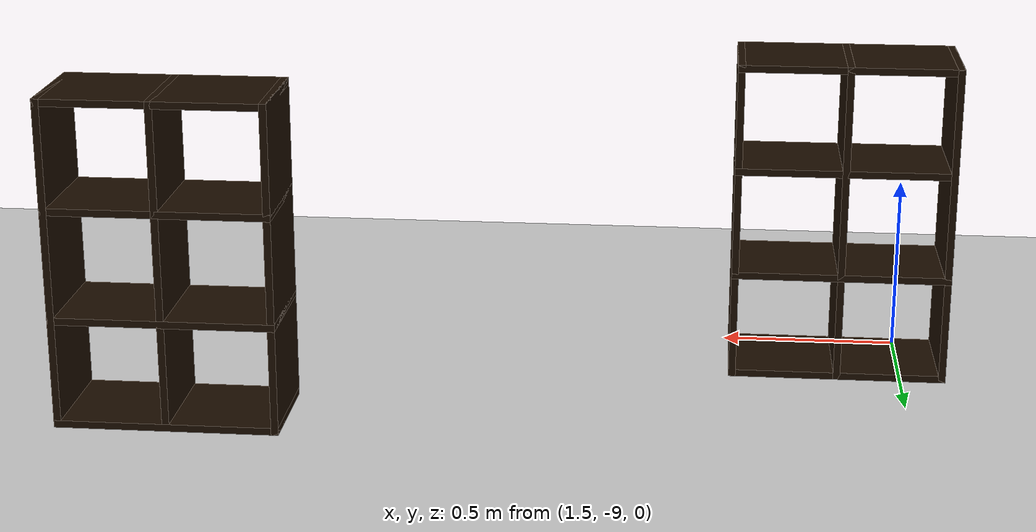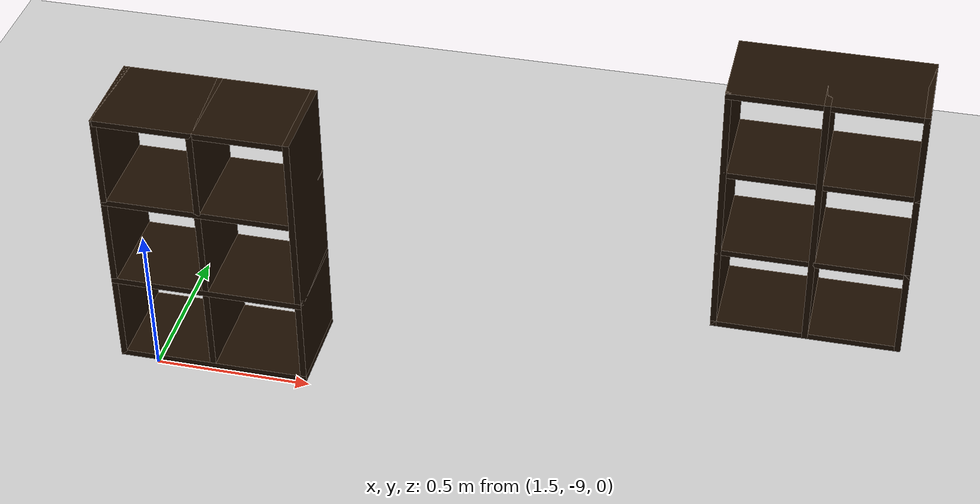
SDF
<sdf version="1.6">
 <world name="default">
  <model name="ground_plane">
   <static>1</static>
   <link name="link">
    <collision name="collision">
     <geometry><plane><normal>0 0 1</normal><size>100 100</size></plane></geometry>
     <surface>
      <contact><collide_bitmask>65535</collide_bitmask></contact>
      <friction><ode><mu>100</mu><mu2>50</mu2></ode></friction>
     </surface>
    </collision>
    <visual name="visual">
     <cast_shadows>0</cast_shadows>
     <geometry><plane><normal>0 0 1</normal><size>100 100</size></plane></geometry>
     <material>
      <script><uri>file://media/materials/scripts/gazebo.material</uri><name>Gazebo/Grey</name></script>
     </material>
    </visual>
   </link>
  </model>
  <model name="6_Cube_StorageE">
   <link name="Wall_0">
    <pose>0 0 0.01 0 -0 0</pose>
    <inertial>
     <mass>1.6201</mass>
     <inertia><ixx>0.0119</ixx><iyy>0.0631</iyy><izz>0.0513</izz><ixy>0</ixy><ixz>0</ixz><iyz>0</iyz></inertia>
    </inertial>
    <collision name="Wall_0_Collision"><geometry><box><size>0.616 0.296 0.02</size></box></geometry></collision>
    <visual name="Wall_0_Visual">
     <geometry><box><size>0.616 0.296 0.02</size></box></geometry>
     <material>
      <script><uri>file://media/materials/scripts/gazebo.material</uri><name>Gazebo/Grey</name></script>
      <ambient>0.105882 0.0509804 0 1</ambient>
     </material>
    </visual>
   </link>
   <joint name="0_2" type="fixed">
    <pose>-0.308 0 0 0 -0 0</pose>
    <parent>Wall_2</parent>
    <child>Wall_0</child>
    <axis>
     <xyz>1 0 0</xyz>
     <use_parent_model_frame>0</use_parent_model_frame>
     <limit><lower>-1e+16</lower><upper>1e+16</upper></limit>
    </axis>
   </joint>
   <joint name="0_12" type="fixed">
    <parent>Wall_12</parent>
    <child>Wall_0</child>
    <axis>
     <xyz>0 0 1</xyz>
     <use_parent_model_frame>0</use_parent_model_frame>
     <limit><lower>-1e+16</lower><upper>1e+16</upper></limit>
    </axis>
   </joint>
   <joint name="0_4" type="fixed">
    <pose>0.308 0 0 0 -0 0</pose>
    <parent>Wall_4</parent>
    <child>Wall_0</child>
    <axis>
     <xyz>1 0 0</xyz>
     <use_parent_model_frame>0</use_parent_model_frame>
     <limit><lower>-1e+16</lower><upper>1e+16</upper></limit>
    </axis>
   </joint>
   <link name="Wall_10">
    <pose>0 0 0.61 0 -0 0</pose>
    <inertial>
     <mass>1.6201</mass>
     <inertia><ixx>0.0119</ixx><iyy>0.0631</iyy><izz>0.0513</izz><ixy>0</ixy><ixz>0</ixz><iyz>0</iyz></inertia>
    </inertial>
    <collision name="Wall_10_Collision"><geometry><box><size>0.616 0.296 0.02</size></box></geometry></collision>
    <visual name="Wall_10_Visual">
     <geometry><box><size>0.616 0.296 0.02</size></box></geometry>
     <material>
      <script><uri>file://media/materials/scripts/gazebo.material</uri><name>Gazebo/Grey</name></script>
      <ambient>0.105882 0.0509804 0 1</ambient>
     </material>
    </visual>
   </link>
   <joint name="10_2" type="fixed">
    <pose>-0.308 0 0 0 -0 0</pose>
    <parent>Wall_2</parent>
    <child>Wall_10</child>
    <axis>
     <xyz>1 0 0</xyz>
     <use_parent_model_frame>0</use_parent_model_frame>
     <limit><lower>-1e+16</lower><upper>1e+16</upper></limit>
    </axis>
   </joint>
   <joint name="10_12" type="fixed">
    <parent>Wall_12</parent>
    <child>Wall_10</child>
    <axis>
     <xyz>0 0 1</xyz>
     <use_parent_model_frame>0</use_parent_model_frame>
     <limit><lower>-1e+16</lower><upper>1e+16</upper></limit>
    </axis>
   </joint>
   <joint name="10_4" type="fixed">
    <pose>0.308 0 0 0 -0 0</pose>
    <parent>Wall_4</parent>
    <child>Wall_10</child>
    <axis>
     <xyz>1 0 0</xyz>
     <use_parent_model_frame>0</use_parent_model_frame>
     <limit><lower>-1e+16</lower><upper>1e+16</upper></limit>
    </axis>
   </joint>
   <link name="Wall_12">
    <pose>0 0 0.4575 0 -0 0</pose>
    <inertial>
     <mass>2.4065</mass>
     <inertia><ixx>0.0177</ixx><iyy>0.1855</iyy><izz>0.168</izz><ixy>0</ixy><ixz>0</ixz><iyz>0</iyz></inertia>
    </inertial>
    <collision name="Wall_12_Collision"><geometry><box><size>0.02 0.296 0.915</size></box></geometry></collision>
    <visual name="Wall_12_Visual">
     <geometry><box><size>0.02 0.296 0.915</size></box></geometry>
     <material>
      <script><uri>file://media/materials/scripts/gazebo.material</uri><name>Gazebo/Grey</name></script>
      <ambient>0.105882 0.0509804 0 1</ambient>
     </material>
    </visual>
   </link>
   <link name="Wall_2">
    <pose>-0.298 0 0.4575 0 -0 0</pose>
    <inertial>
     <mass>2.4065</mass>
     <inertia><ixx>0.0177</ixx><iyy>0.1855</iyy><izz>0.168</izz><ixy>0</ixy><ixz>0</ixz><iyz>0</iyz></inertia>
    </inertial>
    <collision name="Wall_2_Collision"><geometry><box><size>0.02 0.296 0.915</size></box></geometry></collision>
    <visual name="Wall_2_Visual">
     <geometry><box><size>0.02 0.296 0.915</size></box></geometry>
     <material>
      <script><uri>file://media/materials/scripts/gazebo.material</uri><name>Gazebo/Grey</name></script>
      <ambient>0.105882 0.0509804 0 1</ambient>
     </material>
    </visual>
   </link>
   <link name="Wall_4">
    <pose>0.298 0 0.4575 0 -0 0</pose>
    <inertial>
     <mass>2.4065</mass>
     <inertia><ixx>0.0177</ixx><iyy>0.1855</iyy><izz>0.168</izz><ixy>0</ixy><ixz>0</ixz><iyz>0</iyz></inertia>
    </inertial>
    <collision name="Wall_4_Collision"><geometry><box><size>0.02 0.296 0.915</size></box></geometry></collision>
    <visual name="Wall_4_Visual">
     <geometry><box><size>0.02 0.296 0.915</size></box></geometry>
     <material>
      <script><uri>file://media/materials/scripts/gazebo.material</uri><name>Gazebo/Grey</name></script>
      <ambient>0.105882 0.0509804 0 1</ambient>
     </material>
    </visual>
   </link>
   <link name="Wall_6">
    <pose>0 0 0.905 0 -0 0</pose>
    <inertial>
     <mass>1.6201</mass>
     <inertia><ixx>0.0119</ixx><iyy>0.0631</iyy><izz>0.0513</izz><ixy>0</ixy><ixz>0</ixz><iyz>0</iyz></inertia>
    </inertial>
    <collision name="Wall_6_Collision"><geometry><box><size>0.616 0.296 0.02</size></box></geometry></collision>
    <visual name="Wall_6_Visual">
     <geometry><box><size>0.616 0.296 0.02</size></box></geometry>
     <material>
      <script><uri>file://media/materials/scripts/gazebo.material</uri><name>Gazebo/Grey</name></script>
      <ambient>0.105882 0.0509804 0 1</ambient>
     </material>
    </visual>
   </link>
   <joint name="6_2" type="fixed">
    <pose>-0.308 0 0 0 -0 0</pose>
    <parent>Wall_2</parent>
    <child>Wall_6</child>
    <axis>
     <xyz>2 0 0</xyz>
     <use_parent_model_frame>0</use_parent_model_frame>
     <limit><lower>-1e+16</lower><upper>1e+16</upper></limit>
    </axis>
   </joint>
   <joint name="6_12" type="fixed">
    <parent>Wall_12</parent>
    <child>Wall_6</child>
    <axis>
     <xyz>0 0 1</xyz>
     <use_parent_model_frame>0</use_parent_model_frame>
     <limit><lower>-1e+16</lower><upper>1e+16</upper></limit>
    </axis>
   </joint>
   <joint name="6_4" type="fixed">
    <pose>0.308 0 0 0 -0 0</pose>
    <parent>Wall_4</parent>
    <child>Wall_6</child>
    <axis>
     <xyz>1 0 0</xyz>
     <use_parent_model_frame>0</use_parent_model_frame>
     <limit><lower>-1e+16</lower><upper>1e+16</upper></limit>
    </axis>
   </joint>
   <link name="Wall_8">
    <pose>0 0 0.305 0 -0 0</pose>
    <inertial>
     <mass>1.6201</mass>
     <inertia><ixx>0.0119</ixx><iyy>0.0631</iyy><izz>0.0513</izz><ixy>0</ixy><ixz>0</ixz><iyz>0</iyz></inertia>
    </inertial>
    <collision name="Wall_8_Collision"><geometry><box><size>0.616 0.296 0.02</size></box></geometry></collision>
    <visual name="Wall_8_Visual">
     <geometry><box><size>0.616 0.296 0.02</size></box></geometry>
     <material>
      <script><uri>file://media/materials/scripts/gazebo.material</uri><name>Gazebo/Grey</name></script>
      <ambient>0.105882 0.0509804 0 1</ambient>
     </material>
    </visual>
   </link>
   <joint name="8_2" type="fixed">
    <pose>-0.308 0 0 0 -0 0</pose>
    <parent>Wall_2</parent>
    <child>Wall_8</child>
    <axis>
     <xyz>1 0 0</xyz>
     <use_parent_model_frame>0</use_parent_model_frame>
     <limit><lower>-1e+16</lower><upper>1e+16</upper></limit>
    </axis>
   </joint>
   <joint name="8_12" type="fixed">
    <parent>Wall_12</parent>
    <child>Wall_8</child>
    <axis>
     <xyz>0 0 1</xyz>
     <use_parent_model_frame>0</use_parent_model_frame>
     <limit><lower>-1e+16</lower><upper>1e+16</upper></limit>
    </axis>
   </joint>
   <joint name="8_4" type="fixed">
    <pose>0.308 0 0 0 -0 0</pose>
    <parent>Wall_4</parent>
    <child>Wall_8</child>
    <axis>
     <xyz>1 0 0</xyz>
     <use_parent_model_frame>0</use_parent_model_frame>
     <limit><lower>-1e+16</lower><upper>1e+16</upper></limit>
    </axis>
   </joint>
   <static>1</static>
   <pose>3.49863 -8.29663 0 0 -0 0</pose>
  </model>
  <model name="6_Cube_StorageE_1">
   <link name="Wall_0">
    <pose>0 0 0.01 0 -0 0</pose>
    <inertial>
     <mass>1.6201</mass>
     <inertia><ixx>0.0119</ixx><iyy>0.0631</iyy><izz>0.0513</izz><ixy>0</ixy><ixz>0</ixz><iyz>0</iyz></inertia>
    </inertial>
    <collision name="Wall_0_Collision"><geometry><box><size>0.616 0.296 0.02</size></box></geometry></collision>
    <visual name="Wall_0_Visual">
     <geometry><box><size>0.616 0.296 0.02</size></box></geometry>
     <material>
      <script><uri>file://media/materials/scripts/gazebo.material</uri><name>Gazebo/Grey</name></script>
      <ambient>0.105882 0.0509804 0 1</ambient>
     </material>
    </visual>
   </link>
   <joint name="0_2" type="fixed">
    <pose>-0.308 0 0 0 -0 0</pose>
    <parent>Wall_2</parent>
    <child>Wall_0</child>
    <axis>
     <xyz>1 0 0</xyz>
     <use_parent_model_frame>0</use_parent_model_frame>
     <limit><lower>-1e+16</lower><upper>1e+16</upper></limit>
    </axis>
   </joint>
   <joint name="0_12" type="fixed">
    <parent>Wall_12</parent>
    <child>Wall_0</child>
    <axis>
     <xyz>0 0 1</xyz>
     <use_parent_model_frame>0</use_parent_model_frame>
     <limit><lower>-1e+16</lower><upper>1e+16</upper></limit>
    </axis>
   </joint>
   <joint name="0_4" type="fixed">
    <pose>0.308 0 0 0 -0 0</pose>
    <parent>Wall_4</parent>
    <child>Wall_0</child>
    <axis>
     <xyz>1 0 0</xyz>
     <use_parent_model_frame>0</use_parent_model_frame>
     <limit><lower>-1e+16</lower><upper>1e+16</upper></limit>
    </axis>
   </joint>
   <link name="Wall_10">
    <pose>0 0 0.61 0 -0 0</pose>
    <inertial>
     <mass>1.6201</mass>
     <inertia><ixx>0.0119</ixx><iyy>0.0631</iyy><izz>0.0513</izz><ixy>0</ixy><ixz>0</ixz><iyz>0</iyz></inertia>
    </inertial>
    <collision name="Wall_10_Collision"><geometry><box><size>0.616 0.296 0.02</size></box></geometry></collision>
    <visual name="Wall_10_Visual">
     <geometry><box><size>0.616 0.296 0.02</size></box></geometry>
     <material>
      <script><uri>file://media/materials/scripts/gazebo.material</uri><name>Gazebo/Grey</name></script>
      <ambient>0.105882 0.0509804 0 1</ambient>
     </material>
    </visual>
   </link>
   <joint name="10_2" type="fixed">
    <pose>-0.308 0 0 0 -0 0</pose>
    <parent>Wall_2</parent>
    <child>Wall_10</child>
    <axis>
     <xyz>1 0 0</xyz>
     <use_parent_model_frame>0</use_parent_model_frame>
     <limit><lower>-1e+16</lower><upper>1e+16</upper></limit>
    </axis>
   </joint>
   <joint name="10_12" type="fixed">
    <parent>Wall_12</parent>
    <child>Wall_10</child>
    <axis>
     <xyz>0 0 1</xyz>
     <use_parent_model_frame>0</use_parent_model_frame>
     <limit><lower>-1e+16</lower><upper>1e+16</upper></limit>
    </axis>
   </joint>
   <joint name="10_4" type="fixed">
    <pose>0.308 0 0 0 -0 0</pose>
    <parent>Wall_4</parent>
    <child>Wall_10</child>
    <axis>
     <xyz>1 0 0</xyz>
     <use_parent_model_frame>0</use_parent_model_frame>
     <limit><lower>-1e+16</lower><upper>1e+16</upper></limit>
    </axis>
   </joint>
   <link name="Wall_12">
    <pose>0 0 0.4575 0 -0 0</pose>
    <inertial>
     <mass>2.4065</mass>
     <inertia><ixx>0.0177</ixx><iyy>0.1855</iyy><izz>0.168</izz><ixy>0</ixy><ixz>0</ixz><iyz>0</iyz></inertia>
    </inertial>
    <collision name="Wall_12_Collision"><geometry><box><size>0.02 0.296 0.915</size></box></geometry></collision>
    <visual name="Wall_12_Visual">
     <geometry><box><size>0.02 0.296 0.915</size></box></geometry>
     <material>
      <script><uri>file://media/materials/scripts/gazebo.material</uri><name>Gazebo/Grey</name></script>
      <ambient>0.105882 0.0509804 0 1</ambient>
     </material>
    </visual>
   </link>
   <link name="Wall_2">
    <pose>-0.298 0 0.4575 0 -0 0</pose>
    <inertial>
     <mass>2.4065</mass>
     <inertia><ixx>0.0177</ixx><iyy>0.1855</iyy><izz>0.168</izz><ixy>0</ixy><ixz>0</ixz><iyz>0</iyz></inertia>
    </inertial>
    <collision name="Wall_2_Collision"><geometry><box><size>0.02 0.296 0.915</size></box></geometry></collision>
    <visual name="Wall_2_Visual">
     <geometry><box><size>0.02 0.296 0.915</size></box></geometry>
     <material>
      <script><uri>file://media/materials/scripts/gazebo.material</uri><name>Gazebo/Grey</name></script>
      <ambient>0.105882 0.0509804 0 1</ambient>
     </material>
    </visual>
   </link>
   <link name="Wall_4">
    <pose>0.298 0 0.4575 0 -0 0</pose>
    <inertial>
     <mass>2.4065</mass>
     <inertia><ixx>0.0177</ixx><iyy>0.1855</iyy><izz>0.168</izz><ixy>0</ixy><ixz>0</ixz><iyz>0</iyz></inertia>
    </inertial>
    <collision name="Wall_4_Collision"><geometry><box><size>0.02 0.296 0.915</size></box></geometry></collision>
    <visual name="Wall_4_Visual">
     <geometry><box><size>0.02 0.296 0.915</size></box></geometry>
     <material>
      <script><uri>file://media/materials/scripts/gazebo.material</uri><name>Gazebo/Grey</name></script>
      <ambient>0.105882 0.0509804 0 1</ambient>
     </material>
    </visual>
   </link>
   <link name="Wall_6">
    <pose>0 0 0.905 0 -0 0</pose>
    <inertial>
     <mass>1.6201</mass>
     <inertia><ixx>0.0119</ixx><iyy>0.0631</iyy><izz>0.0513</izz><ixy>0</ixy><ixz>0</ixz><iyz>0</iyz></inertia>
    </inertial>
    <collision name="Wall_6_Collision"><geometry><box><size>0.616 0.296 0.02</size></box></geometry></collision>
    <visual name="Wall_6_Visual">
     <geometry><box><size>0.616 0.296 0.02</size></box></geometry>
     <material>
      <script><uri>file://media/materials/scripts/gazebo.material</uri><name>Gazebo/Grey</name></script>
      <ambient>0.105882 0.0509804 0 1</ambient>
     </material>
    </visual>
   </link>
   <joint name="6_2" type="fixed">
    <pose>-0.308 0 0 0 -0 0</pose>
    <parent>Wall_2</parent>
    <child>Wall_6</child>
    <axis>
     <xyz>2 0 0</xyz>
     <use_parent_model_frame>0</use_parent_model_frame>
     <limit><lower>-1e+16</lower><upper>1e+16</upper></limit>
    </axis>
   </joint>
   <joint name="6_12" type="fixed">
    <parent>Wall_12</parent>
    <child>Wall_6</child>
    <axis>
     <xyz>0 0 1</xyz>
     <use_parent_model_frame>0</use_parent_model_frame>
     <limit><lower>-1e+16</lower><upper>1e+16</upper></limit>
    </axis>
   </joint>
   <joint name="6_4" type="fixed">
    <pose>0.308 0 0 0 -0 0</pose>
    <parent>Wall_4</parent>
    <child>Wall_6</child>
    <axis>
     <xyz>1 0 0</xyz>
     <use_parent_model_frame>0</use_parent_model_frame>
     <limit><lower>-1e+16</lower><upper>1e+16</upper></limit>
    </axis>
   </joint>
   <link name="Wall_8">
    <pose>0 0 0.305 0 -0 0</pose>
    <inertial>
     <mass>1.6201</mass>
     <inertia><ixx>0.0119</ixx><iyy>0.0631</iyy><izz>0.0513</izz><ixy>0</ixy><ixz>0</ixz><iyz>0</iyz></inertia>
    </inertial>
    <collision name="Wall_8_Collision"><geometry><box><size>0.616 0.296 0.02</size></box></geometry></collision>
    <visual name="Wall_8_Visual">
     <geometry><box><size>0.616 0.296 0.02</size></box></geometry>
     <material>
      <script><uri>file://media/materials/scripts/gazebo.material</uri><name>Gazebo/Grey</name></script>
      <ambient>0.105882 0.0509804 0 1</ambient>
     </material>
    </visual>
   </link>
   <joint name="8_2" type="fixed">
    <pose>-0.308 0 0 0 -0 0</pose>
    <parent>Wall_2</parent>
    <child>Wall_8</child>
    <axis>
     <xyz>1 0 0</xyz>
     <use_parent_model_frame>0</use_parent_model_frame>
     <limit><lower>-1e+16</lower><upper>1e+16</upper></limit>
    </axis>
   </joint>
   <joint name="8_12" type="fixed">
    <parent>Wall_12</parent>
    <child>Wall_8</child>
    <axis>
     <xyz>0 0 1</xyz>
     <use_parent_model_frame>0</use_parent_model_frame>
     <limit><lower>-1e+16</lower><upper>1e+16</upper></limit>
    </axis>
   </joint>
   <joint name="8_4" type="fixed">
    <pose>0.308 0 0 0 -0 0</pose>
    <parent>Wall_4</parent>
    <child>Wall_8</child>
    <axis>
     <xyz>1 0 0</xyz>
     <use_parent_model_frame>0</use_parent_model_frame>
     <limit><lower>-1e+16</lower><upper>1e+16</upper></limit>
    </axis>
   </joint>
   <static>1</static>
   <pose>1.68015 -8.84091 0 0 -0 0</pose>
  </model>
 </world>
</sdf>
